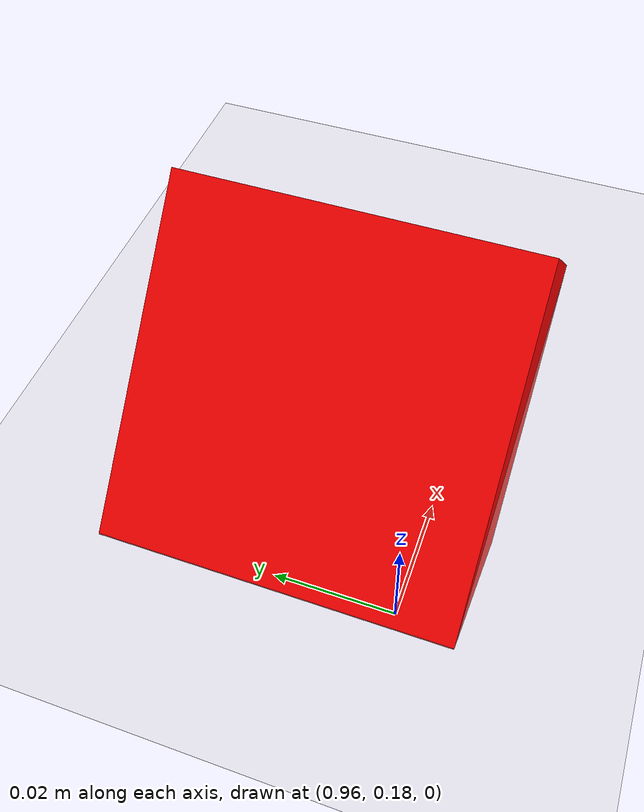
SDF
<sdf version="1.6">
  <world name="shapes">

  <physics type="ode">
    <max_step_size>0.001</max_step_size>         <!-- 1 ms per step -->
    <real_time_update_rate>1000</real_time_update_rate> <!-- 1000 steps/sec -->
  </physics>

    <light type="directional" name="sun">
      <cast_shadows>true</cast_shadows>
      <pose>0 0 10 0 0 0</pose>
      <diffuse>0.8 0.8 0.8 1</diffuse>
      <specular>0.2 0.2 0.2 1</specular>
      <attenuation>
        <range>1000</range>
        <constant>0.9</constant>
        <linear>0.01</linear>
        <quadratic>0.001</quadratic>
      </attenuation>
      <direction>-0.5 0.1 -0.9</direction>
    </light>

    <model name="ground_plane">
      <static>true</static>
      <link name="link">
        <collision name="collision">
          <geometry>
            <plane>
              <normal>0 0 1</normal>
              <size>100 100</size>
            </plane>
          </geometry>
        </collision>
        <visual name="visual">
          <geometry>
            <plane>
              <normal>0 0 1</normal>
              <size>100 100</size>
            </plane>
          </geometry>
          <material>
            <ambient>0.8 0.8 0.8 1</ambient>
            <diffuse>0.8 0.8 0.8 1</diffuse>
            <specular>0.8 0.8 0.8 1</specular>
          </material>
        </visual>
      </link>
    </model>

    <model name="box">
      <static>true</static>
      <pose>1.0 0.2 0.0 0 0.78 0</pose>
      <link name="box_link">
        <inertial>
          <inertia>
            <ixx>0.16666</ixx>
            <ixy>0</ixy>
            <ixz>0</ixz>
            <iyy>0.16666</iyy>
            <iyz>0</iyz>
            <izz>0.16666</izz>
          </inertia>
          <mass>100.0</mass>
        </inertial>
        <visual name="box_visual">
          <geometry>
            <box>
              <size>0.06 0.06 0.06</size>
            </box>
          </geometry>
          <material>
            <ambient>1 0 0 1</ambient>
            <diffuse>1 0 0 1</diffuse>
            <specular>1 0 0 1</specular>
          </material>
        </visual>
        <collision name="box_collision">
          <geometry>
            <box>
              <size>0.06 0.06 0.06</size>
            </box>
          </geometry>
        </collision>

      </link>
    </model>

<!-- Plugins Section -->

<gazebo>
  <plugin
      filename="gz-sim-user-commands-system"
      name="gz::sim::systems::UserCommands">
  </plugin>

  <plugin
      filename="gz-sim-scene-broadcaster-system"
      name="gz::sim::systems::SceneBroadcaster">
  </plugin>

  <plugin
      filename="gz-sim-sensors-system"
      name="gz::sim::systems::Sensors">
  </plugin>

  <plugin
      filename="gz-sim-imu-system"
      name="gz::sim::systems::Imu">
  </plugin>

 </gazebo>

</world>
</sdf>
